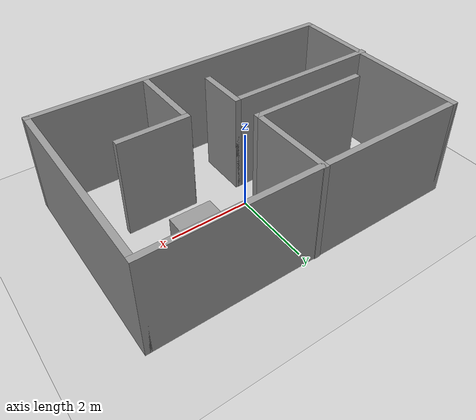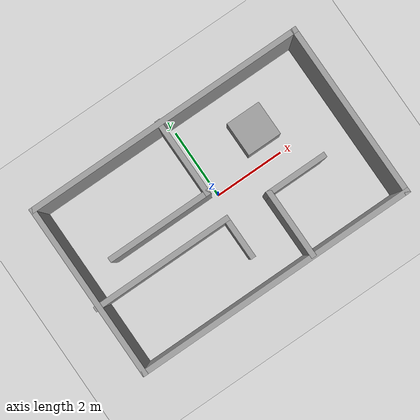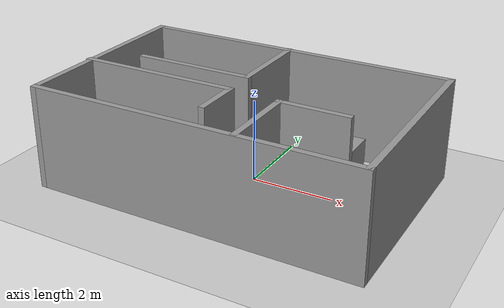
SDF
<sdf version="1.7">
 <world name="default">
  <light name="sun" type="directional">
   <pose>0 0 10 0 -0 0</pose>
   <diffuse>0.8 0.8 0.8 1</diffuse>
   <specular>0.2 0.2 0.2 1</specular>
   <attenuation>
    <range>1000</range>
    <constant>0.9</constant>
    <linear>0.01</linear>
    <quadratic>0.001</quadratic>
   </attenuation>
   <direction>-0.5 0.1 -0.9</direction>
   <spot><inner_angle>0</inner_angle><outer_angle>0</outer_angle><falloff>0</falloff></spot>
  </light>
  <model name="ground_plane">
   <static>1</static>
   <link name="link">
    <collision name="collision">
     <geometry><plane><normal>0 0 1</normal><size>100 100</size></plane></geometry>
     <surface><friction><ode><mu>100</mu><mu2>50</mu2></ode></friction></surface>
    </collision>
    <visual name="visual">
     <cast_shadows>0</cast_shadows>
     <geometry><plane><normal>0 0 1</normal><size>100 100</size></plane></geometry>
     <material>
      <script><uri>file://media/materials/scripts/gazebo.material</uri><name>Gazebo/Grey</name></script>
     </material>
    </visual>
   </link>
  </model>
  <gravity>0 0 -9.8</gravity>
  <magnetic_field>6e-06 2.3e-05 -4.2e-05</magnetic_field>
  <atmosphere type="adiabatic"/>
  <physics type="ode">
   <max_step_size>0.001</max_step_size>
   <real_time_factor>1</real_time_factor>
   <real_time_update_rate>1000</real_time_update_rate>
  </physics>
  <scene><ambient>0.4 0.4 0.4 1</ambient><background>0.7 0.7 0.7 1</background><shadows>1</shadows></scene>
  <audio><device>default</device></audio>
  <spherical_coordinates>
   <surface_model>EARTH_WGS84</surface_model>
   <latitude_deg>0</latitude_deg>
   <longitude_deg>0</longitude_deg>
   <elevation>0</elevation>
   <heading_deg>0</heading_deg>
  </spherical_coordinates>
  <model name="room">
   <pose>-0.13775 0.95114 0 0 -0 0</pose>
   <link name="Wall_0">
    <collision name="Wall_0_Collision">
     <geometry><box><size>8 0.15 2.5</size></box></geometry>
     <pose>0 0 1.25 0 -0 0</pose>
    </collision>
    <visual name="Wall_0_Visual">
     <pose>0 0 1.25 0 -0 0</pose>
     <geometry><box><size>8 0.15 2.5</size></box></geometry>
     <material>
      <script><uri>file://media/materials/scripts/gazebo.material</uri><name>Gazebo/Grey</name></script>
      <ambient>1 1 1 1</ambient>
     </material>
     <meta><layer>0</layer></meta>
    </visual>
    <pose>0.02275 1.2525 0 0 -0 0</pose>
   </link>
   <link name="Wall_1">
    <collision name="Wall_1_Collision">
     <geometry><box><size>5 0.15 2.5</size></box></geometry>
     <pose>0 0 1.25 0 -0 0</pose>
    </collision>
    <visual name="Wall_1_Visual">
     <pose>0 0 1.25 0 -0 0</pose>
     <geometry><box><size>5 0.15 2.5</size></box></geometry>
     <material>
      <script><uri>file://media/materials/scripts/gazebo.material</uri><name>Gazebo/Grey</name></script>
      <ambient>1 1 1 1</ambient>
     </material>
     <meta><layer>0</layer></meta>
    </visual>
    <pose>3.94775 -1.1725 0 0 -0 -1.5708</pose>
   </link>
   <link name="Wall_11">
    <collision name="Wall_11_Collision">
     <geometry><box><size>2 0.15 2.5</size></box></geometry>
     <pose>0 0 1.25 0 -0 0</pose>
    </collision>
    <visual name="Wall_11_Visual">
     <pose>0 0 1.25 0 -0 0</pose>
     <geometry><box><size>2 0.15 2.5</size></box></geometry>
     <material>
      <script><uri>file://media/materials/scripts/gazebo.material</uri><name>Gazebo/Grey</name></script>
      <ambient>1 1 1 1</ambient>
     </material>
     <meta><layer>0</layer></meta>
    </visual>
    <pose>1.14675 -2.634 0 0 -0 -1.5708</pose>
   </link>
   <link name="Wall_13">
    <collision name="Wall_13_Collision">
     <geometry><box><size>1.75 0.15 2.5</size></box></geometry>
     <pose>0 0 1.25 0 -0 0</pose>
    </collision>
    <visual name="Wall_13_Visual">
     <pose>0 0 1.25 0 -0 0</pose>
     <geometry><box><size>1.75 0.15 2.5</size></box></geometry>
     <material>
      <script><uri>file://media/materials/scripts/gazebo.material</uri><name>Gazebo/Grey</name></script>
      <ambient>1 1 1 1</ambient>
     </material>
     <meta><layer>0</layer></meta>
    </visual>
    <pose>1.94675 -1.709 0 0 -0 0</pose>
   </link>
   <link name="Wall_2">
    <collision name="Wall_2_Collision">
     <geometry><box><size>8 0.15 2.5</size></box></geometry>
     <pose>0 0 1.25 0 -0 0</pose>
    </collision>
    <visual name="Wall_2_Visual">
     <pose>0 0 1.25 0 -0 0</pose>
     <geometry><box><size>8 0.15 2.5</size></box></geometry>
     <material>
      <script><uri>file://media/materials/scripts/gazebo.material</uri><name>Gazebo/Grey</name></script>
      <ambient>1 1 1 1</ambient>
     </material>
     <meta><layer>0</layer></meta>
    </visual>
    <pose>0.02275 -3.5975 0 0 -0 3.14159</pose>
   </link>
   <link name="Wall_3">
    <collision name="Wall_3_Collision">
     <geometry><box><size>5 0.15 2.5</size></box></geometry>
     <pose>0 0 1.25 0 -0 0</pose>
    </collision>
    <visual name="Wall_3_Visual">
     <pose>0 0 1.25 0 -0 0</pose>
     <geometry><box><size>5 0.15 2.5</size></box></geometry>
     <material>
      <script><uri>file://media/materials/scripts/gazebo.material</uri><name>Gazebo/Grey</name></script>
      <ambient>1 1 1 1</ambient>
     </material>
     <meta><layer>0</layer></meta>
    </visual>
    <pose>-3.90225 -1.1725 0 0 -0 1.5708</pose>
   </link>
   <link name="Wall_5">
    <collision name="Wall_5_Collision">
     <geometry><box><size>2.25 0.15 2.5</size></box></geometry>
     <pose>0 0 1.25 0 -0 0</pose>
    </collision>
    <visual name="Wall_5_Visual">
     <pose>0 0 1.25 0 -0 0</pose>
     <geometry><box><size>2.25 0.15 2.5</size></box></geometry>
     <material>
      <script><uri>file://media/materials/scripts/gazebo.material</uri><name>Gazebo/Grey</name></script>
      <ambient>1 1 1 1</ambient>
     </material>
     <meta><layer>0</layer></meta>
    </visual>
    <pose>-0.11825 0.2195 0 0 -0 -1.5708</pose>
   </link>
   <link name="Wall_6">
    <collision name="Wall_6_Collision">
     <geometry><box><size>3 0.15 2.5</size></box></geometry>
     <pose>0 0 1.25 0 -0 0</pose>
    </collision>
    <visual name="Wall_6_Visual">
     <pose>0 0 1.25 0 -0 0</pose>
     <geometry><box><size>3 0.15 2.5</size></box></geometry>
     <material>
      <script><uri>file://media/materials/scripts/gazebo.material</uri><name>Gazebo/Grey</name></script>
      <ambient>1 1 1 1</ambient>
     </material>
     <meta><layer>0</layer></meta>
    </visual>
    <pose>-1.54325 -0.8305 0 0 -0 3.14159</pose>
   </link>
   <link name="Wall_8">
    <collision name="Wall_8_Collision">
     <geometry><box><size>4 0.15 2.5</size></box></geometry>
     <pose>0 0 1.25 0 -0 0</pose>
    </collision>
    <visual name="Wall_8_Visual">
     <pose>0 0 1.25 0 -0 0</pose>
     <geometry><box><size>4 0.15 2.5</size></box></geometry>
     <material>
      <script><uri>file://media/materials/scripts/gazebo.material</uri><name>Gazebo/Grey</name></script>
      <ambient>1 1 1 1</ambient>
     </material>
     <meta><layer>0</layer></meta>
    </visual>
    <pose>-2.02275 -1.6285 0 0 -0 0</pose>
   </link>
   <link name="Wall_9">
    <collision name="Wall_9_Collision">
     <geometry><box><size>1.25 0.15 2.5</size></box></geometry>
     <pose>0 0 1.25 0 -0 0</pose>
    </collision>
    <visual name="Wall_9_Visual">
     <pose>0 0 1.25 0 -0 0</pose>
     <geometry><box><size>1.25 0.15 2.5</size></box></geometry>
     <material>
      <script><uri>file://media/materials/scripts/gazebo.material</uri><name>Gazebo/Grey</name></script>
      <ambient>1 1 1 1</ambient>
     </material>
     <meta><layer>0</layer></meta>
    </visual>
    <pose>-0.09775 -2.1785 0 0 -0 -1.5708</pose>
   </link>
   <static>1</static>
  </model>
  <model name="unit_box">
   <pose>1.70025 0.866039 0.5 0 -0 0</pose>
   <link name="link">
    <inertial>
     <mass>1</mass>
     <inertia>
      <ixx>0.166667</ixx>
      <ixy>0</ixy>
      <ixz>0</ixz>
      <iyy>0.166667</iyy>
      <iyz>0</iyz>
      <izz>0.166667</izz>
     </inertia>
    </inertial>
    <collision name="collision"><geometry><box><size>1 1 1</size></box></geometry></collision>
    <visual name="visual">
     <geometry><box><size>1 1 1</size></box></geometry>
     <material>
      <script><name>Gazebo/Grey</name><uri>file://media/materials/scripts/gazebo.material</uri></script>
     </material>
    </visual>
   </link>
  </model>
 </world>
</sdf>
